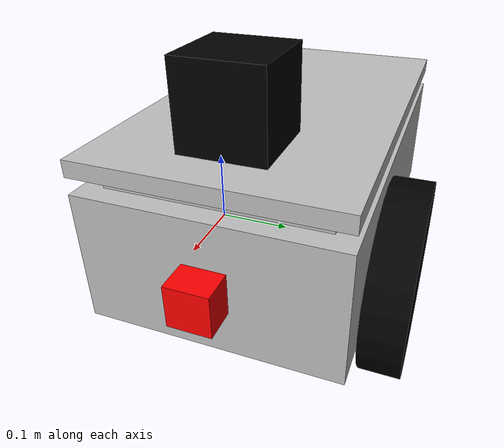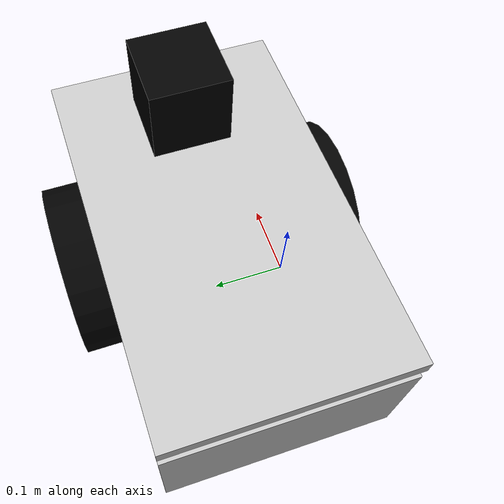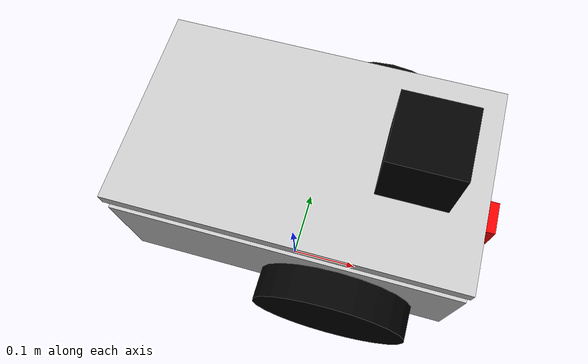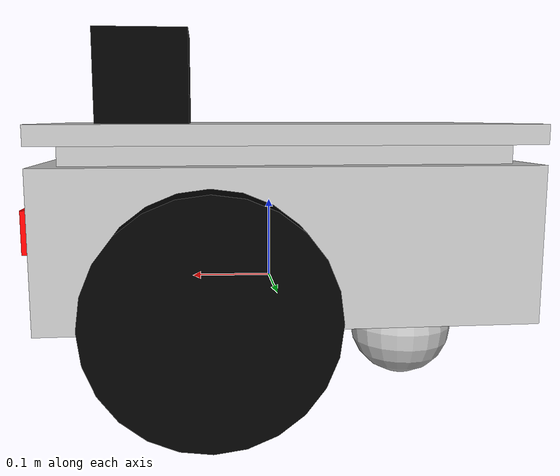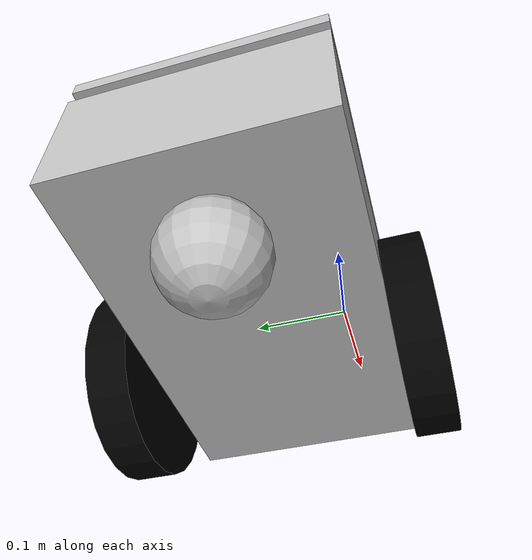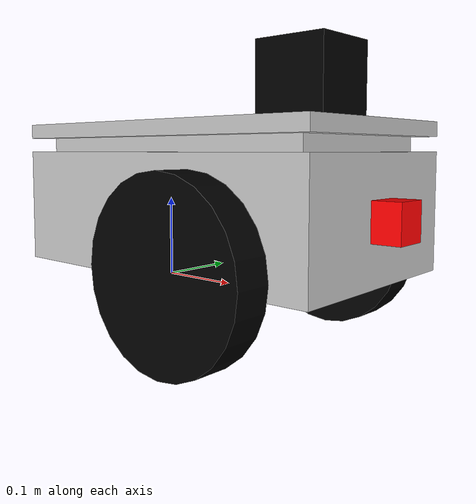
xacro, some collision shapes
<?xml version='1.0'?>

<robot name="my_robot" xmlns:xacro="http://www.ros.org/wiki/xacro">
<xacro:include filename="$(find my_robot)/urdf/my_robot.gazebo" />

<xacro:property name="length" value="0.5" />
<xacro:property name="width" value="0.3" />
<xacro:property name="length_middle" value="${length-0.05}" />
<xacro:property name="width_middle" value="${width-0.05}" />
<xacro:property name="height_bottom" value="0.16" />
<xacro:property name="height_middle" value="0.02" />
<xacro:property name="height_top" value="0.02" />
<xacro:property name="wheel_radius" value="0.12" />
<xacro:property name="wheel_thickness" value="0.05" />
<xacro:property name="caster_wheel_radius" value="0.06" />
<xacro:property name="lift" value="0.1" />

  <link name="robot_footprint"></link>

  <joint name="robot_footprint_joint" type="fixed">
    <origin xyz="0 ${lift} 0" rpy="0 0 0" />
    <parent link="robot_footprint"/>
    <child link="chassis" />
  </joint>

  <link name="chassis">
    <inertial>
      <mass value="100.0"/>
      <origin xyz="0.0 0 0" rpy=" 0 0 0"/>
      <inertia
          ixx="0.1" ixy="0" ixz="0"
          iyy="0.1" iyz="0"
          izz="0.1"
      />
    </inertial>

    <collision name='chassis_bottom_collision'>
      <origin xyz=" 0 0 ${height_bottom/2}" rpy=" 0 0 0"/>
      <geometry>
        <box size="${length} ${width} ${height_bottom}"/>
      </geometry>
    </collision>

    <visual>
      <origin xyz=" 0 0 ${height_bottom/2}" rpy=" 0 0 0"/>
      <geometry>
        <box size="${length} ${width} ${height_bottom}"/>
      </geometry>
      <material name="silver"/>
    </visual>

    <collision name='chassis_middle_collision'>
      <origin xyz="0 0 ${height_bottom+height_middle/2}" rpy=" 0 0 0"/>
      <geometry>
        <box size="${length_middle} ${width_middle} ${height_middle}"/>
      </geometry>
    </collision>

    <visual>
      <origin xyz="0 0 ${height_bottom+height_middle/2}" rpy=" 0 0 0"/>
      <geometry>
        <box size="${length_middle} ${width_middle} ${height_middle}"/>
      </geometry>
      <material name="silver"/>
    </visual>

    <collision name='chassis_top_collision'>
      <origin xyz="0 0 ${height_bottom+height_middle+height_top/2}" rpy=" 0 0 0"/>
      <geometry>
        <box size="${length} ${width} ${height_top}"/>
      </geometry>
    </collision>

    <visual>
      <origin xyz="0 0 ${height_bottom+height_middle+height_top/2}" rpy=" 0 0 0"/>
      <geometry>
        <box size="${length} ${width} ${height_top}"/>
      </geometry>
      <material name="silver"/>
    </visual>

    <collision name="caster_wheel_collision">
      <origin xyz="${-(length/2-(0.04+caster_wheel_radius))} 0 ${-(lift-caster_wheel_radius)}" rpy=" 0 0 0"/>
      <geometry>
        <sphere radius="${caster_wheel_radius}"/>
      </geometry>
      <surface>
        <friction>
          <ode>
            <mu>0</mu>
            <mu2>0</mu2>
            <slip1>1.0</slip1>
            <slip2>1.0</slip2>
          </ode>
        </friction>
      </surface>
    </collision>

    <visual>
      <origin xyz="${-(length/2-(0.04+caster_wheel_radius))} 0 ${-(lift-caster_wheel_radius)}" rpy=" 0 0 0"/>
      <geometry>
        <sphere radius="${caster_wheel_radius}"/>
      </geometry>
      <material name="silver"/>
    </visual>

  </link>

  <xacro:macro name="wheels" params="side reflect">
    <joint type="continuous" name="${side}_wheel_hinge">
     <origin xyz="${length/2-(0.05+wheel_radius)} ${reflect*(width + wheel_thickness)/2} ${-(lift-wheel_radius)}" rpy="0 0 0"/>
     <child link="${side}_wheel"/>
     <parent link="chassis"/>
     <axis xyz="0 1 0" rpy="0 0 0"/>
     <limit effort="10000" velocity="1000"/>
     <dynamics damping="1.0" friction="1.0"/>
   </joint>

   <link name="${side}_wheel">
      <inertial>
        <origin xyz="0 0 0" rpy="0 1.5707 1.5707"/>
        <mass value="5"/>
        <inertia
            ixx="0.02" ixy="0" ixz="0"
            iyy="0.02" iyz="0"
            izz="0.04"
        />
      </inertial>
      <visual>
        <origin xyz="0 0 0" rpy="0 1.5707 1.5707"/>
        <geometry>
          <cylinder radius="${wheel_radius}" length="${wheel_thickness}"/>
        </geometry>
        <material name="black"/>
      </visual>
      <collision>
        <origin xyz="0 0 0" rpy="0 1.5707 1.5707"/>
        <geometry>
          <cylinder radius="${wheel_radius}" length="${wheel_thickness}"/>
        </geometry>
      </collision>
    </link>
  </xacro:macro>

  <xacro:wheels side="left" reflect="1" />
  <xacro:wheels side="right" reflect="-1" />

  <joint type="fixed" name="camera_joint">
   <origin xyz="${length/2 + 0.05/4} 0 ${height_bottom/2}" rpy="0 0 0"/>
   <child link="camera"/>
   <parent link="chassis"/>
 </joint>

 <link name="camera">
   <inertial>
     <origin xyz="0.05 0.05 0.05" rpy="0 0 0"/>
     <mass value="0.1"/>
     <inertia
         ixx="1e-6" ixy="0" ixz="0"
         iyy="1e-6" iyz="0"
         izz="1e-6"
     />
   </inertial>
   <visual>
     <origin xyz="0 0 0" rpy="0 0 0"/>
     <geometry>
       <box size="0.05 0.05 0.05"/>
     </geometry>
     <material name="red"/>
   </visual>
   <collision>
     <origin xyz="0 0 0" rpy="0 0 0"/>
     <geometry>
       <box size="0.05 0.05 0.05"/>
     </geometry>
   </collision>
 </link>

 <joint name="camera_optical_joint" type="fixed">
   <origin xyz="0 0 0" rpy="-1.5707 0 -1.5707"/>
   <parent link="camera"/>
   <child link="camera_link_optical"/>
 </joint>

 <link name="camera_link_optical">
 </link>

 <joint type="fixed" name="hokuyo_joint">
  <origin xyz=" ${length/2-(0.05+0.1/2)} 0 ${height_bottom+height_middle+height_top+0.1/2}" rpy="0 0 0"/>
  <child link="hokuyo"/>
  <parent link="chassis"/>
</joint>

<link name="hokuyo">
  <inertial>
    <origin xyz="0 0 0" rpy="0 0 0"/>
    <mass value="1e-5"/>
    <inertia
        ixx="1e-6" ixy="0" ixz="0"
        iyy="1e-6" iyz="0"
        izz="1e-6"
    />
  </inertial>
  <visual>
    <origin xyz="0 0 0" rpy="0 0 0"/>
    <geometry>
      <mesh filename="package://my_robot/meshes/hokuyo.dae"/>
    </geometry>
    <material name="black"/>
  </visual>
  <collision>
    <origin xyz="0 0 0" rpy="0 0 0"/>
    <geometry>
      <box size="0.1 0.1 0.1"/>
    </geometry>
  </collision>
</link>

<joint name="imu_joint" type="fixed">
  <origin xyz="0 0 0" rpy="0 0 0"/>
  <parent link="robot_footprint"/>
  <child link="imu_link"/>
</joint>

<link name="imu_link">
</link>

<material name="silver">
  <color rgba="0.75 0.75 0.75 1"/>
</material>

<material name="red">
  <color rgba="1 0 0 1"/>
</material>

<material name="black">
  <color rgba="0 0 0 1"/>
</material>

<gazebo reference="chassis">
    <material>Gazebo/DarkGrey</material>
</gazebo>

<gazebo reference="camera">
    <material>Gazebo/Red</material>
</gazebo>

<gazebo reference="left_wheel">
    <material>Gazebo/Black</material>
</gazebo>

<gazebo reference="right_wheel">
    <material>Gazebo/Black</material>
</gazebo>

</robot>
